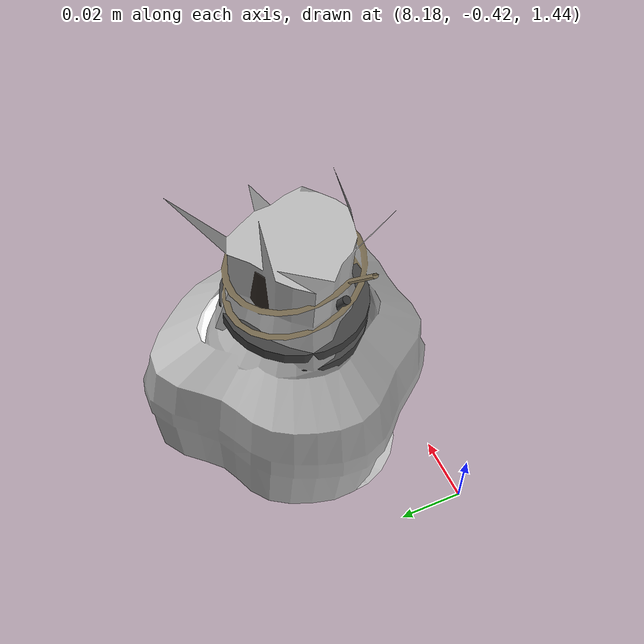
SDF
<sdf version="1.11">
 <world name="peach_orchard">
  <model name="ground">
   <static>true</static>
   <link name="link">
    <visual name="soil">
     <geometry><plane><normal>0 0 1</normal><size>32 22</size></plane></geometry>
     <material>
      <ambient>1 1 1 1</ambient>
      <diffuse>1 1 1 1</diffuse>
      <specular>0.1 0.1 0.1 1</specular>
      <pbr>
       <metal>
        <albedo_map>textures/soil_albedo.png</albedo_map>
        <normal_map type="tangent">textures/soil_normal.png</normal_map>
        <roughness>0.95</roughness>
        <metalness>0</metalness>
       </metal>
      </pbr>
     </material>
    </visual>
    <collision name="c_soil">
     <geometry><plane><normal>0 0 1</normal><size>32 22</size></plane></geometry>
    </collision>
   </link>
  </model>
  <model name="peach_tree_r4_t3_08">
   <pose>8.22 -0.378005 1.45 0 0.0319995 -2.63799</pose>
   <static>true</static>
   <link name="bag">
    <visual name="bag_mesh">
     <pose>0 0 0.0465958 0 0 -0</pose>
     <geometry>
      <mesh><uri>model://peach_sim/meshes/bagged_peach.glb</uri><scale>0.914191 1.11757 1.05899</scale></mesh>
     </geometry>
    </visual>
    <visual name="body">
     <pose>0 0 0.0285958 0 0 0</pose>
     <geometry><ellipsoid><radii>0.0342822 0.0290568 0.0308834</radii></ellipsoid></geometry>
     <material>
      <ambient>1 1 1 1</ambient>
      <diffuse>1 1 1 1</diffuse>
      <specular>0.1 0.1 0.1 1</specular>
      <pbr>
       <metal>
        <albedo_map>textures/paper_bag_albedo.png</albedo_map>
        <normal_map type="tangent">textures/paper_bag_normal.png</normal_map>
        <roughness>0.72</roughness>
        <metalness>0</metalness>
       </metal>
      </pbr>
     </material>
    </visual>
    <visual name="bottom_fold">
     <pose>0 0 0.012 0 0 0.35</pose>
     <geometry><box><size>0.0531374 0.0334154 0.022</size></box></geometry>
     <material>
      <ambient>1 1 1 1</ambient>
      <diffuse>1 1 1 1</diffuse>
      <specular>0.1 0.1 0.1 1</specular>
      <pbr>
       <metal>
        <albedo_map>textures/paper_bag_albedo.png</albedo_map>
        <normal_map type="tangent">textures/paper_bag_normal.png</normal_map>
        <roughness>0.8</roughness>
        <metalness>0</metalness>
       </metal>
      </pbr>
     </material>
    </visual>
    <visual name="fruit">
     <pose>0 0 0.017204 0 0 0</pose>
     <geometry><sphere><radius>0.0241322</radius></sphere></geometry>
     <material>
      <ambient>1 1 1 1</ambient>
      <diffuse>1 1 1 1</diffuse>
      <specular>0.1 0.1 0.1 1</specular>
      <pbr>
       <metal>
        <albedo_map>textures/fruit_skin_albedo.png</albedo_map>
        <normal_map type="tangent">textures/fruit_skin_normal.png</normal_map>
        <roughness>0.55</roughness>
        <metalness>0</metalness>
       </metal>
      </pbr>
     </material>
    </visual>
    <visual name="neck">
     <pose>0 0 0.0661915 0 0 0</pose>
     <geometry><cylinder><radius>0.013</radius><length>0.018</length></cylinder></geometry>
     <material>
      <ambient>1 1 1 1</ambient>
      <diffuse>1 1 1 1</diffuse>
      <specular>0.1 0.1 0.1 1</specular>
      <pbr>
       <metal>
        <albedo_map>textures/paper_bag_albedo.png</albedo_map>
        <normal_map type="tangent">textures/paper_bag_normal.png</normal_map>
        <roughness>0.75</roughness>
        <metalness>0</metalness>
       </metal>
      </pbr>
     </material>
    </visual>
    <visual name="gather">
     <pose>0 0 0.0471915 0 0 0</pose>
     <geometry><cylinder><radius>0.019</radius><length>0.02</length></cylinder></geometry>
     <material>
      <ambient>1 1 1 1</ambient>
      <diffuse>1 1 1 1</diffuse>
      <specular>0.1 0.1 0.1 1</specular>
      <pbr>
       <metal>
        <albedo_map>textures/paper_bag_albedo.png</albedo_map>
        <normal_map type="tangent">textures/paper_bag_normal.png</normal_map>
        <roughness>0.8</roughness>
        <metalness>0</metalness>
       </metal>
      </pbr>
     </material>
    </visual>
    <visual name="inner_paper">
     <pose>0 0 0.0711915 0 0 0</pose>
     <geometry><cylinder><radius>0.01</radius><length>0.008</length></cylinder></geometry>
     <material>
      <ambient>0.180392 0.14902 0.133333 1</ambient>
      <diffuse>0.180392 0.14902 0.133333 1</diffuse>
      <specular>0.1 0.1 0.1 1</specular>
     </material>
    </visual>
    <visual name="wire_0">
     <pose>0 0 0.0611915 0 0 0</pose>
     <geometry><cylinder><radius>0.0205</radius><length>0.0035</length></cylinder></geometry>
     <material>
      <ambient>0.25 0.25 0.25 1</ambient>
      <diffuse>0.25 0.25 0.25 1</diffuse>
      <specular>0.1 0.1 0.1 1</specular>
     </material>
    </visual>
    <visual name="wire_1">
     <pose>0 0 0.0681915 0 0 0</pose>
     <geometry><cylinder><radius>0.0205</radius><length>0.0035</length></cylinder></geometry>
     <material>
      <ambient>0.25 0.25 0.25 1</ambient>
      <diffuse>0.25 0.25 0.25 1</diffuse>
      <specular>0.1 0.1 0.1 1</specular>
     </material>
    </visual>
    <visual name="wire_tail">
     <pose>0.01 0 0.0691915 0 0.521618 0</pose>
     <geometry><cylinder><radius>0.0012</radius><length>0.026</length></cylinder></geometry>
     <material>
      <ambient>0.25 0.25 0.25 1</ambient>
      <diffuse>0.25 0.25 0.25 1</diffuse>
      <specular>0.1 0.1 0.1 1</specular>
     </material>
    </visual>
    <collision name="c_body">
     <pose>0 0 0.0285958 0 0 0</pose>
     <geometry><cylinder><radius>0.0342822</radius><length>0.0571915</length></cylinder></geometry>
    </collision>
   </link>
  </model>
 </world>
</sdf>
